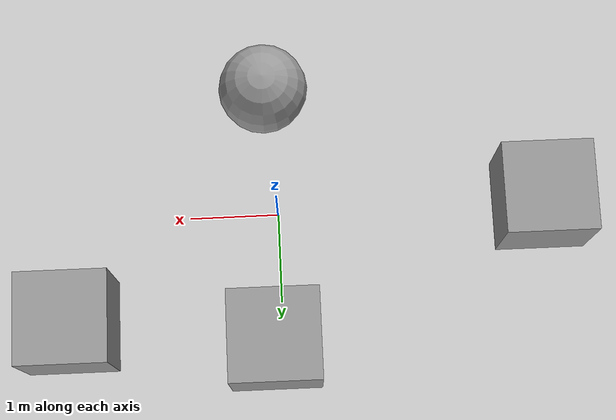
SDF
<sdf version="1.6">
 <world name="default">
  <light name="sun" type="directional">
   <pose>0 0 10 0 -0 0</pose>
   <diffuse>0.8 0.8 0.8 1</diffuse>
   <specular>0.2 0.2 0.2 1</specular>
   <attenuation>
    <range>1000</range>
    <constant>0.9</constant>
    <linear>0.01</linear>
    <quadratic>0.001</quadratic>
   </attenuation>
   <direction>-0.5 0.1 -0.9</direction>
  </light>
  <model name="ground_plane">
   <static>1</static>
   <link name="link">
    <collision name="collision">
     <geometry><plane><normal>0 0 1</normal><size>100 100</size></plane></geometry>
     <surface><friction><ode><mu>100</mu><mu2>50</mu2></ode></friction></surface>
    </collision>
    <visual name="visual">
     <cast_shadows>0</cast_shadows>
     <geometry><plane><normal>0 0 1</normal><size>100 100</size></plane></geometry>
     <material>
      <script><uri>file://media/materials/scripts/gazebo.material</uri><name>Gazebo/Grey</name></script>
     </material>
    </visual>
   </link>
  </model>
  <gravity>0 0 -9.8</gravity>
  <magnetic_field>6e-06 2.3e-05 -4.2e-05</magnetic_field>
  <atmosphere type="adiabatic"/>
  <physics name="default_physics" default="0" type="ode">
   <max_step_size>0.001</max_step_size>
   <real_time_factor>1</real_time_factor>
   <real_time_update_rate>1000</real_time_update_rate>
  </physics>
  <scene><ambient>0.4 0.4 0.4 1</ambient><background>0.7 0.7 0.7 1</background><shadows>1</shadows></scene>
  <spherical_coordinates>
   <surface_model>EARTH_WGS84</surface_model>
   <latitude_deg>0</latitude_deg>
   <longitude_deg>0</longitude_deg>
   <elevation>0</elevation>
   <heading_deg>0</heading_deg>
  </spherical_coordinates>
  <model name="unit_box">
   <pose>-2.95125 0.000892 0.499995 -1e-05 -0 -0</pose>
   <link name="link">
    <inertial>
     <mass>1</mass>
     <inertia>
      <ixx>0.166667</ixx>
      <ixy>0</ixy>
      <ixz>0</ixz>
      <iyy>0.166667</iyy>
      <iyz>0</iyz>
      <izz>0.166667</izz>
     </inertia>
    </inertial>
    <collision name="collision"><geometry><box><size>1 1 1</size></box></geometry></collision>
    <visual name="visual">
     <geometry><box><size>1 1 1</size></box></geometry>
     <material>
      <script><name>Gazebo/Grey</name><uri>file://media/materials/scripts/gazebo.material</uri></script>
     </material>
    </visual>
   </link>
  </model>
  <model name="unit_box_0">
   <pose>0.079706 1.47544 0.499995 0 1e-05 0</pose>
   <link name="link">
    <inertial>
     <mass>1</mass>
     <inertia>
      <ixx>0.166667</ixx>
      <ixy>0</ixy>
      <ixz>0</ixz>
      <iyy>0.166667</iyy>
      <iyz>0</iyz>
      <izz>0.166667</izz>
     </inertia>
    </inertial>
    <collision name="collision"><geometry><box><size>1 1 1</size></box></geometry></collision>
    <visual name="visual">
     <geometry><box><size>1 1 1</size></box></geometry>
     <material>
      <script><name>Gazebo/Grey</name><uri>file://media/materials/scripts/gazebo.material</uri></script>
     </material>
    </visual>
   </link>
  </model>
  <model name="unit_sphere">
   <pose>0.114358 -1.36177 0.5 0 -0 0</pose>
   <link name="link">
    <inertial>
     <mass>1</mass>
     <inertia><ixx>0.1</ixx><ixy>0</ixy><ixz>0</ixz><iyy>0.1</iyy><iyz>0</iyz><izz>0.1</izz></inertia>
    </inertial>
    <collision name="collision"><geometry><sphere><radius>0.5</radius></sphere></geometry></collision>
    <visual name="visual">
     <geometry><sphere><radius>0.5</radius></sphere></geometry>
     <material>
      <script><name>Gazebo/Grey</name><uri>file://media/materials/scripts/gazebo.material</uri></script>
     </material>
    </visual>
   </link>
  </model>
  <model name="unit_box_1">
   <pose>2.32752 1.20108 0.5 0 -0 0</pose>
   <link name="link">
    <inertial>
     <mass>1</mass>
     <inertia>
      <ixx>0.166667</ixx>
      <ixy>0</ixy>
      <ixz>0</ixz>
      <iyy>0.166667</iyy>
      <iyz>0</iyz>
      <izz>0.166667</izz>
     </inertia>
    </inertial>
    <collision name="collision"><geometry><box><size>1 1 1</size></box></geometry></collision>
    <visual name="visual">
     <geometry><box><size>1 1 1</size></box></geometry>
     <material>
      <script><name>Gazebo/Grey</name><uri>file://media/materials/scripts/gazebo.material</uri></script>
     </material>
    </visual>
   </link>
  </model>
  <plugin name="dds_distance" filename="libgazebo_ros_distance_plugin_ros.so">
   <target_object>unit_box</target_object>
  </plugin>
 </world>
</sdf>
